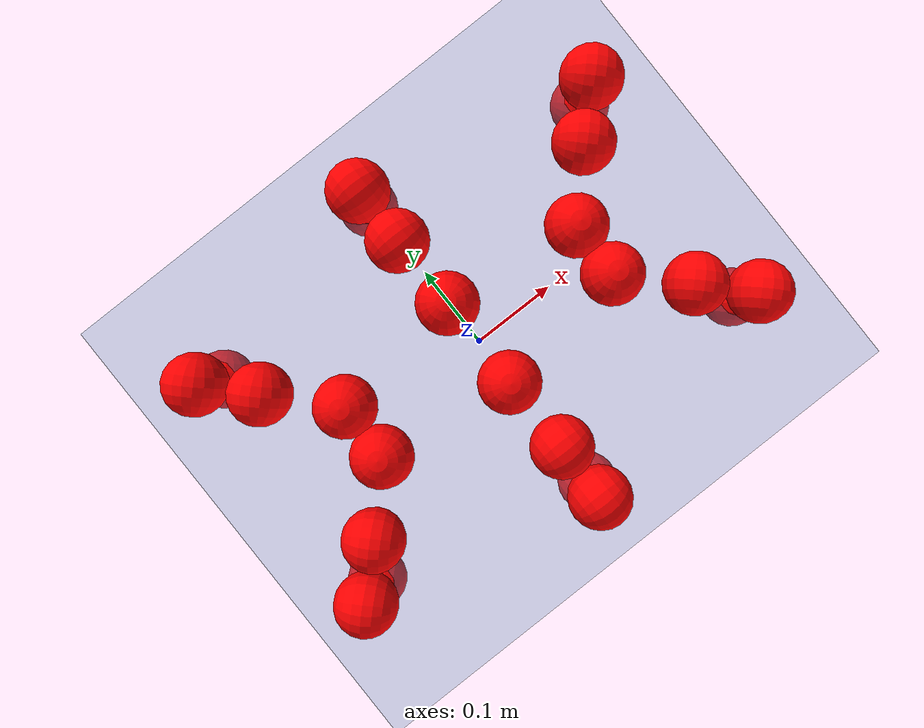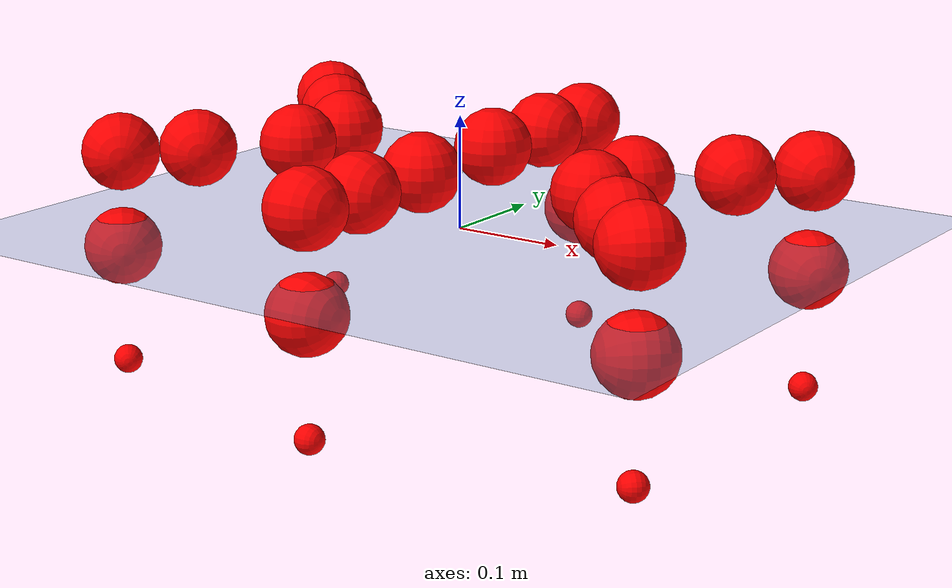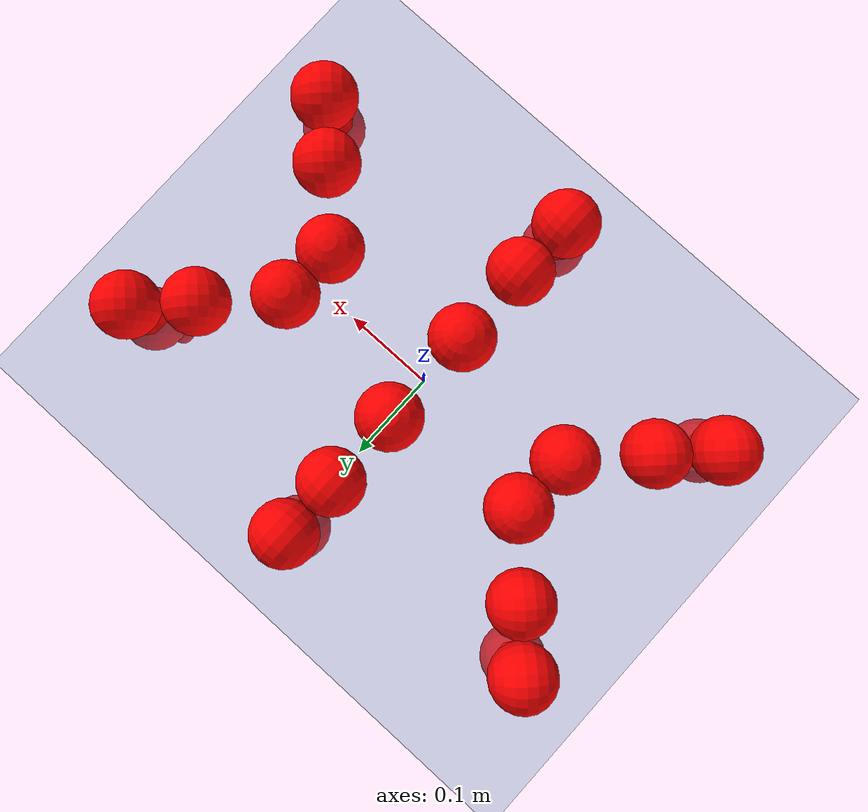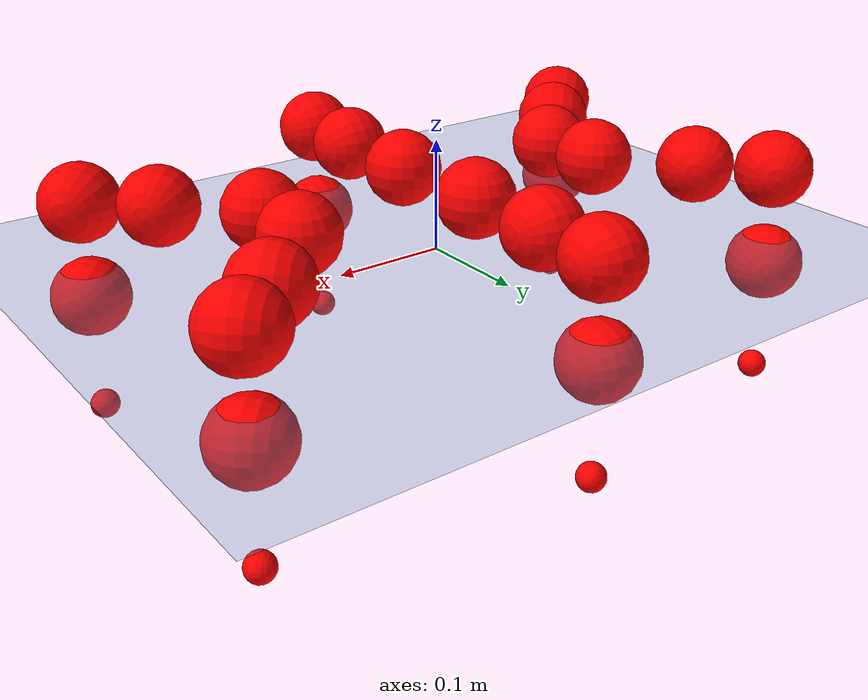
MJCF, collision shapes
<mujoco model="Golem">
  <compiler angle="radian" assetdir="assets" balanceinertia="true" inertiafromgeom="false"/>

  <option timestep="0.005" density="1.2" viscosity="2e-05"/>

  <size nkey="1"/>

  <visual>
    <quality shadowsize="8192"/>
    <map shadowclip="0.5"/>
  </visual>

  <default>
    <default class="/">
      <joint armature="0.01" damping="0.01" frictionloss="0.01"/>
      <geom contype="0" conaffinity="0" group="1" solref="-1000 -80"/>
      <site size="0.01 0.005 0.005" group="5"/>
      <general forcelimited="true" biastype="affine" gainprm="25" biasprm="0 -25 -0.5"/>
      <default class="visual">
        <geom type="mesh" group="2"/>
      </default>
      <default class="collision">
        <geom group="3"/>
      </default>
      <default class="foot">
        <geom size="0.01 0 0" condim="6" group="4" priority="1" solimp="0.015 1 0.01"/>
      </default>
      <default class="reward_collision_sphere">
        <geom group="5" rgba="1 0 0 1"/>
      </default>
    </default>
  </default>

  <asset>
    <texture type="skybox" colorspace="auto" name="//unnamed_texture_0" builtin="gradient" rgb1="0.95 0.95 0.95" rgb2="0.95 0.95 0.95" width="100" height="600"/>
    <texture type="2d" colorspace="auto" name="texplane" builtin="checker" rgb1="0.345 0.575 0.748" rgb2="0.345 0.575 0.748" markrgb="1 1 1" width="512" height="512"/>
    <material name="MatPlane" class="/" texture="texplane" texuniform="true" texrepeat="2 2" specular="0.9"/>
    <mesh name="body" class="/" file="body.stl" scale="0.001 0.001 0.001"/>
    <mesh name="coxa" class="/" file="coxa.stl" scale="0.001 0.001 0.001"/>
    <mesh name="femur" class="/" file="femur.stl" scale="0.001 0.001 0.001"/>
    <mesh name="tibia" class="/" file="tibia.stl" scale="0.001 0.001 0.001"/>
    <mesh name="tarsus" class="/" file="tarsus.stl" scale="0.001 0.001 0.001"/>
  </asset>

  <worldbody>
    <geom name="floor" class="/" size="100 100 0.125" type="plane" group="0" material="MatPlane"/>
    <light name="toplight_shadow" class="/" pos="0 0 5" dir="0.0990148 0.0990148 -0.990148" type="directional" ambient="0.04 0.04 0.04" diffuse="0.55 0.55 0.55" specular="0.12 0.12 0.12"/>
    <light name="toplight_fill" class="/" pos="0 0 5" dir="0.0990148 0.0990148 -0.990148" type="directional" castshadow="false" ambient="0.04 0.04 0.04" diffuse="0.3 0.3 0.3" specular="0.08 0.08 0.08"/>
    <body name="trunk" pos="-0.000330383 -7.02799e-05 0.00016397" quat="1 0.000209699 3.2695e-05 -0.000831567">
      <inertial pos="0.000210242 0.00180661 -0.00172405" quat="0.999995 5.38453e-05 0.00199328 0.00226364" mass="2.39011" diaginertia="0.00943942 0.00103657 0.00837719"/>
      <joint name="//unnamed_joint_0" type="free"/>
      <geom name="//unnamed_geom_1" class="/" pos="0 0 0.0620126" quat="1 0 0 0" type="mesh" rgba="0.9 0.9 0.9 1" mesh="body"/>
      <site name="imu" class="/" pos="0.130693 0.00492482 0.100876" size="0.0086608"/>
      <camera name="track" class="/" pos="0 -1.27275 0" quat="0.707107 0.707107 0 0" mode="trackcom"/>
      <camera name="ego_camera" class="/" pos="0.129079 0 0.0968947" quat="-0.5 -0.5 0.5 0.5"/>
      <body name="coxa_RR" pos="-0.177091 -0.0526051 0.0617248" quat="0.382613 0.000342691 -0.000576874 -0.923909">
        <inertial pos="-0.000285742 -0.000818159 -0.000688471" quat="0.999946 -0.00128465 0.00640424 0.0081182" mass="0.135452" diaginertia="0.00982171 0.00105 0.00878413"/>
        <joint name="coxa_joint_RR" class="/" pos="0 0 0" axis="0.000690885 -0.00163613 -0.999998" range="-3.14188 3.09731" armature="0.00951978" damping="0.00423873" frictionloss="0.00856515"/>
        <geom name="//unnamed_geom_2" class="/" type="mesh" rgba="0.2 0.2 0.2 1" mesh="coxa"/>
        <geom name="//unnamed_geom_3" class="reward_collision_sphere" size="0.0346432" pos="-0.0297874 0 0"/>
        <body name="femur_RR" pos="0.0593585 0.00156101 -0.0010883" quat="0.499993 -0.500008 0.500001 0.499998">
          <inertial pos="0.00146765 -0.00108729 0.000464147" quat="0.999977 0.00438472 -0.002852 0.00436554" mass="0.130199" diaginertia="0.00959525 0.00103976 0.00854418"/>
          <joint name="femur_joint_RR" class="/" pos="0 0 0" axis="9.84096e-05 -0.000386199 -1" range="-3.15012 3.14426" armature="0.00871594" damping="0.0028053" frictionloss="0.00823765"/>
          <geom name="//unnamed_geom_4" class="/" type="mesh" rgba="0.9 0.9 0.9 1" mesh="femur"/>
          <geom name="//unnamed_geom_5" class="reward_collision_sphere" size="0.0346432"/>
          <body name="tibia_RR" pos="0.000627736 -0.0681479 -4.0073e-05" quat="-0.000213572 1 2.15399e-05 -3.66162e-05">
            <inertial pos="-0.000410661 0.000784212 0.000116182" quat="0.999988 -0.00255339 -0.00173062 0.00370569" mass="0.13282" diaginertia="0.00949773 0.00103429 0.00857118"/>
            <joint name="tibia_joint_RR" class="/" pos="0 0 0" axis="0.00366929 0.00387411 0.999986" range="-3.12001 3.14484" armature="0.0086557" damping="0" frictionloss="0.00852203"/>
            <geom name="//unnamed_geom_6" class="/" type="mesh" rgba="0.2 0.2 0.2 1" mesh="tibia"/>
            <geom name="//unnamed_geom_7" class="reward_collision_sphere" size="0.0346432"/>
            <body name="tarsus_RR" pos="0.0865365 0.00155351 0.000202812" quat="1 0.00018173 -0.000139148 -2.29233e-05">
              <inertial pos="0.0612072 0.000358953 0.000870832" quat="0.500377 0.499764 0.500039 0.499819" mass="0.132409" diaginertia="0.00983197 0.00105968 0.00871976"/>
              <joint name="tarsus_joint_RR" class="/" pos="0 0 0" axis="0.00121316 -0.000773671 0.999999" stiffness="0.00247923" range="-3.13393 3.13836" armature="0.00884617" damping="0.0406999" frictionloss="0.00834671"/>
              <geom name="//unnamed_geom_8" class="/" type="mesh" rgba="0.9 0.9 0.9 1" mesh="tarsus"/>
              <geom name="foot_1" class="foot" size="0.00869986" pos="0.111206 0 0" quat="0 -0.707107 0 0.707107"/>
              <geom name="//unnamed_geom_10" class="reward_collision_sphere" size="0.0346432"/>
              <geom name="//unnamed_geom_11" class="reward_collision_sphere" size="0.0129912" pos="0.106738 0 0"/>
              <site name="foot_1" class="foot" pos="0.111206 0 0" quat="0 -0.707107 0 0.707107" size="0.0086608"/>
            </body>
          </body>
        </body>
      </body>
      <body name="coxa_RM" pos="-0.00192541 -0.0836276 0.0602215" quat="0.706871 -0.000250397 0.000313441 -0.707343">
        <inertial pos="-0.00113399 0.00027367 0.000563976" quat="0.999999 -0.000546865 -0.000697925 -0.00131495" mass="0.132754" diaginertia="0.00994431 0.00105282 0.00868089"/>
        <joint name="coxa_joint_RM" class="/" pos="0 0 0" axis="8.46624e-05 -0.00189251 -0.999998" range="-3.12596 3.13379" armature="0.00878528" damping="0.00893251" frictionloss="0.00880297"/>
        <geom name="//unnamed_geom_12" class="/" type="mesh" rgba="0.2 0.2 0.2 1" mesh="coxa"/>
        <geom name="//unnamed_geom_13" class="reward_collision_sphere" size="0.0346432" pos="-0.0297874 0 0"/>
        <body name="femur_RM" pos="0.0577703 0.00125032 0.000522391" quat="0.500057 -0.500252 0.499715 0.499976">
          <inertial pos="0.000480825 0.000291728 -0.00101304" quat="0.999955 0.00503471 -0.00228365 -0.0077435" mass="0.125133" diaginertia="0.00950456 0.00101656 0.00835562"/>
          <joint name="femur_joint_RM" class="/" pos="0 0 0" axis="0.000208863 0.00010711 -1" range="-3.17957 3.15197" armature="0.00884002" damping="0.00914549" frictionloss="0.00864531"/>
          <geom name="//unnamed_geom_14" class="/" type="mesh" rgba="0.9 0.9 0.9 1" mesh="femur"/>
          <geom name="//unnamed_geom_15" class="reward_collision_sphere" size="0.0346432"/>
          <body name="tibia_RM" pos="-0.000340881 -0.0664859 -0.00149769" quat="-0.000740911 1 0.000475586 0.000382314">
            <inertial pos="-0.000278411 -0.00100067 0.000648225" quat="0.999997 -0.00237744 0.00114483 0.00015224" mass="0.129685" diaginertia="0.00960623 0.00101886 0.0082711"/>
            <joint name="tibia_joint_RM" class="/" pos="0 0 0" axis="0.000243152 0.000149627 1" range="-3.14077 3.13901" armature="0.0084902" damping="0.000806422" frictionloss="0.00891292"/>
            <geom name="//unnamed_geom_16" class="/" type="mesh" rgba="0.2 0.2 0.2 1" mesh="tibia"/>
            <geom name="//unnamed_geom_17" class="reward_collision_sphere" size="0.0346432"/>
            <body name="tarsus_RM" pos="0.0880358 0.000261687 0.000135893" quat="1 -5.27051e-05 -0.000543412 0.00039832">
              <inertial pos="0.0598732 0.000204474 0.000144401" quat="0.501755 0.499784 0.496214 0.502225" mass="0.129646" diaginertia="0.0095977 0.00104107 0.00841026"/>
              <joint name="tarsus_joint_RM" class="/" pos="0 0 0" axis="0.00364683 0.00402929 0.999985" range="-3.14267 3.17912" armature="0.0088885" damping="0.00660426" frictionloss="0.00778752"/>
              <geom name="//unnamed_geom_18" class="/" type="mesh" rgba="0.9 0.9 0.9 1" mesh="tarsus"/>
              <geom name="foot_2" class="foot" size="0.00840959" pos="0.111206 0 0" quat="0 -0.707107 0 0.707107"/>
              <geom name="//unnamed_geom_20" class="reward_collision_sphere" size="0.0346432"/>
              <geom name="//unnamed_geom_21" class="reward_collision_sphere" size="0.0129912" pos="0.106738 0 0"/>
              <site name="foot_2" class="foot" pos="0.111206 0 0" quat="0 -0.707107 0 0.707107" size="0.0086608"/>
            </body>
          </body>
        </body>
      </body>
      <body name="coxa_RF" pos="0.175348 -0.0521596 0.0613738" quat="0.923854 -0.000290841 0.000518233 -0.382745">
        <inertial pos="0.00172614 0.00159395 5.3043e-05" quat="1 0.000227834 0.000588031 0.000635296" mass="0.130678" diaginertia="0.00971862 0.00104964 0.00852877"/>
        <joint name="coxa_joint_RF" class="/" pos="0 0 0" axis="0.00024892 0.000504354 -1" range="-3.15687 3.10554" armature="0.00911784" damping="0.00822023" frictionloss="0.00887207"/>
        <geom name="//unnamed_geom_22" class="/" type="mesh" rgba="0.2 0.2 0.2 1" mesh="coxa"/>
        <geom name="//unnamed_geom_23" class="reward_collision_sphere" size="0.0346432" pos="-0.0297874 0 0"/>
        <body name="femur_RF" pos="0.0583871 -2.66891e-05 -0.000692551" quat="0.500228 -0.500225 0.500002 0.499545">
          <inertial pos="0.00018143 0.000198965 0.00198232" quat="0.999986 -0.00248677 0.000903255 -0.00467569" mass="0.126672" diaginertia="0.00943612 0.00102054 0.00817552"/>
          <joint name="femur_joint_RF" class="/" pos="0 0 0" axis="0.00854376 -0.00531353 -0.999949" range="-3.1492 3.14911" armature="0.00959382" damping="0.00956564" frictionloss="0.00888874"/>
          <geom name="//unnamed_geom_24" class="/" type="mesh" rgba="0.9 0.9 0.9 1" mesh="femur"/>
          <geom name="//unnamed_geom_25" class="reward_collision_sphere" size="0.0346432"/>
          <body name="tibia_RF" pos="0.000855742 -0.0692207 -0.000101186" quat="6.42403e-05 1 -0.00044214 -6.47867e-05">
            <inertial pos="0.000533648 0.000167645 0.000429039" quat="0.999994 0.00267603 0.00141094 0.0014623" mass="0.128938" diaginertia="0.00960207 0.00103083 0.00869021"/>
            <joint name="tibia_joint_RF" class="/" pos="0 0 0" axis="0.00111111 -0.000301304 0.999999" range="-3.14141 3.17019" armature="0.00883752" damping="0.00980925" frictionloss="0.00824725"/>
            <geom name="//unnamed_geom_26" class="/" type="mesh" rgba="0.2 0.2 0.2 1" mesh="tibia"/>
            <geom name="//unnamed_geom_27" class="reward_collision_sphere" size="0.0346432"/>
            <body name="tarsus_RF" pos="0.0862515 0.000162137 0.000352452" quat="1 -8.85178e-05 0.000916188 -0.000124634">
              <inertial pos="0.0590718 -4.81025e-05 -0.000306625" quat="0.499742 0.499664 0.500123 0.50047" mass="0.130244" diaginertia="0.00968349 0.00104388 0.00843368"/>
              <joint name="tarsus_joint_RF" class="/" pos="0 0 0" axis="-0.00833093 -0.00258837 0.999962" range="-3.14376 3.13228" armature="0.00866612" damping="0.00730317" frictionloss="0.00852799"/>
              <geom name="//unnamed_geom_28" class="/" type="mesh" rgba="0.9 0.9 0.9 1" mesh="tarsus"/>
              <geom name="foot_3" class="foot" size="0.00892522" pos="0.111206 0 0" quat="0 -0.707107 0 0.707107"/>
              <geom name="//unnamed_geom_30" class="reward_collision_sphere" size="0.0346432"/>
              <geom name="//unnamed_geom_31" class="reward_collision_sphere" size="0.0129912" pos="0.106738 0 0"/>
              <site name="foot_3" class="foot" pos="0.111206 0 0" quat="0 -0.707107 0 0.707107" size="0.0086608"/>
            </body>
          </body>
        </body>
      </body>
      <body name="coxa_LR" pos="-0.174396 0.0545065 0.0639002" quat="0.382909 0.000549975 -0.00015707 0.923786">
        <inertial pos="0.000127747 -0.000123753 -0.000234748" quat="0.999999 0.00145569 0.000186292 0.000240578" mass="0.130947" diaginertia="0.00948701 0.00104582 0.0083031"/>
        <joint name="coxa_joint_LR" class="/" pos="0 0 0" axis="-0.00433048 0.00880302 -0.999952" range="-3.12084 3.13645" armature="0.00906123" damping="0.0059077" frictionloss="0.00852332"/>
        <geom name="//unnamed_geom_32" class="/" type="mesh" rgba="0.2 0.2 0.2 1" mesh="coxa"/>
        <geom name="//unnamed_geom_33" class="reward_collision_sphere" size="0.0346432" pos="-0.0297874 0 0"/>
        <body name="femur_LR" pos="0.0612825 -0.0023714 -0.0017924" quat="0.500441 -0.499958 0.500026 0.499575">
          <inertial pos="-0.000121108 -0.000615343 -0.00100612" quat="0.999988 -0.000131472 -0.00102933 -0.00477432" mass="0.128239" diaginertia="0.00955257 0.00105085 0.00849983"/>
          <joint name="femur_joint_LR" class="/" pos="0 0 0" axis="0.00224396 0.0018964 0.999996" range="-3.16854 3.16562" armature="0.00857171" damping="0" frictionloss="0.00901342"/>
          <geom name="//unnamed_geom_34" class="/" type="mesh" rgba="0.9 0.9 0.9 1" mesh="femur"/>
          <geom name="//unnamed_geom_35" class="reward_collision_sphere" size="0.0346432"/>
          <body name="tibia_LR" pos="0.000645037 -0.0691605 -0.00215649" quat="-0.000294242 1 0.000142344 2.71541e-05">
            <inertial pos="-0.00228555 0.00102439 -0.00141552" quat="0.999998 0.00147639 0.000658856 -0.000621653" mass="0.129835" diaginertia="0.00956922 0.00105404 0.0085089"/>
            <joint name="tibia_joint_LR" class="/" pos="0 0 0" axis="0.00152376 0.00149077 -0.999998" range="-3.10843 3.152" armature="0.008978" damping="0.00338433" frictionloss="0.0090855"/>
            <geom name="//unnamed_geom_36" class="/" type="mesh" rgba="0.2 0.2 0.2 1" mesh="tibia"/>
            <geom name="//unnamed_geom_37" class="reward_collision_sphere" size="0.0346432"/>
            <body name="tarsus_LR" pos="0.0889731 0.000758078 0.00102172" quat="1 -2.79184e-05 0.000116462 -0.000128318">
              <inertial pos="0.0604703 0.000486842 -0.000629196" quat="0.500248 0.500467 0.499568 0.499716" mass="0.133568" diaginertia="0.0098796 0.00106107 0.00869319"/>
              <joint name="tarsus_joint_LR" class="/" pos="0 0 0" axis="0.00678139 0.00749042 -0.999949" stiffness="0.0012126" range="-3.14441 3.12904" armature="0.00863784" damping="0.0282595" frictionloss="0.0089028"/>
              <geom name="//unnamed_geom_38" class="/" type="mesh" rgba="0.9 0.9 0.9 1" mesh="tarsus"/>
              <geom name="foot_4" class="foot" size="0.00825326" pos="0.111206 0 0" quat="0.707107 0 -0.707107 0"/>
              <geom name="//unnamed_geom_40" class="reward_collision_sphere" size="0.0346432"/>
              <geom name="//unnamed_geom_41" class="reward_collision_sphere" size="0.0129912" pos="0.106738 0 0"/>
              <site name="foot_4" class="foot" pos="0.111206 0 0" quat="0.707107 0 -0.707107 0" size="0.0086608"/>
            </body>
          </body>
        </body>
      </body>
      <body name="coxa_LM" pos="-0.00167528 0.0821329 0.0627352" quat="0.707036 0.000146825 -0.000170691 0.707177">
        <inertial pos="0.00190068 0.00184012 -0.000176938" quat="1 -6.53375e-05 8.28458e-06 0.000333852" mass="0.129998" diaginertia="0.00955024 0.00104292 0.00854377"/>
        <joint name="coxa_joint_LM" class="/" pos="0 0 0" axis="0.000782619 0.00064622 -0.999999" range="-3.14437 3.14446" armature="0.00912703" damping="0.00745093" frictionloss="0.00848885"/>
        <geom name="//unnamed_geom_42" class="/" type="mesh" rgba="0.2 0.2 0.2 1" mesh="coxa"/>
        <geom name="//unnamed_geom_43" class="reward_collision_sphere" size="0.0346432" pos="-0.0297874 0 0"/>
        <body name="femur_LM" pos="0.0544318 0.000621494 -0.000163566" quat="0.499151 -0.499997 0.500526 0.500325">
          <inertial pos="-0.000123854 -0.000527659 2.94529e-05" quat="0.999995 0.00239483 0.000650673 0.001867" mass="0.129025" diaginertia="0.00964552 0.00103483 0.00842067"/>
          <joint name="femur_joint_LM" class="/" pos="0 0 0" axis="-8.07147e-05 5.05073e-05 1" range="-3.15997 3.13702" armature="0.00786424" damping="0.000530775" frictionloss="0.00884398"/>
          <geom name="//unnamed_geom_44" class="/" type="mesh" rgba="0.9 0.9 0.9 1" mesh="femur"/>
          <geom name="//unnamed_geom_45" class="reward_collision_sphere" size="0.0346432"/>
          <body name="tibia_LM" pos="0.00165594 -0.0672245 0.000181256" quat="-2.42868e-05 1 8.7433e-05 2.36184e-05">
            <inertial pos="-0.00122158 -0.000964873 -0.000761655" quat="0.999989 0.00453782 0.000623919 -0.00139017" mass="0.127815" diaginertia="0.0096042 0.0010577 0.00872469"/>
            <joint name="tibia_joint_LM" class="/" pos="0 0 0" axis="0.000351394 -0.000518066 -1" range="-3.12114 3.14693" armature="0.00869572" damping="0" frictionloss="0.00878825"/>
            <geom name="//unnamed_geom_46" class="/" type="mesh" rgba="0.2 0.2 0.2 1" mesh="tibia"/>
            <geom name="//unnamed_geom_47" class="reward_collision_sphere" size="0.0346432"/>
            <body name="tarsus_LM" pos="0.0866406 0.000787593 -0.00180505" quat="1 -1.01665e-05 -1.58707e-05 0.000176894">
              <inertial pos="0.0606896 -0.000954344 -3.35518e-05" quat="0.501038 0.498953 0.501919 0.498081" mass="0.135257" diaginertia="0.00970592 0.00106769 0.00855131"/>
              <joint name="tarsus_joint_LM" class="/" pos="0 0 0" axis="-0.00548717 0.00495338 -0.999973" stiffness="0.00354084" range="-3.14019 3.13749" armature="0.00880023" damping="0.0123355" frictionloss="0.00864742"/>
              <geom name="//unnamed_geom_48" class="/" type="mesh" rgba="0.9 0.9 0.9 1" mesh="tarsus"/>
              <geom name="foot_5" class="foot" size="0.00836374" pos="0.111206 0 0" quat="0.707107 0 -0.707107 0"/>
              <geom name="//unnamed_geom_50" class="reward_collision_sphere" size="0.0346432"/>
              <geom name="//unnamed_geom_51" class="reward_collision_sphere" size="0.0129912" pos="0.106738 0 0"/>
              <site name="foot_5" class="foot" pos="0.111206 0 0" quat="0.707107 0 -0.707107 0" size="0.0086608"/>
            </body>
          </body>
        </body>
      </body>
      <body name="coxa_LF" pos="0.177038 0.0531016 0.0615921" quat="0.923904 3.7673e-05 0.000291561 0.382625">
        <inertial pos="0.000255313 -0.000502336 -9.35358e-06" quat="1 -1.28784e-06 3.45805e-05 -1.83731e-06" mass="0.127367" diaginertia="0.00955051 0.00104052 0.00849107"/>
        <joint name="coxa_joint_LF" class="/" pos="0 0 0" axis="-0.00319972 -7.22037e-05 -0.999995" range="-3.12872 3.15643" armature="0.0084148" damping="0.00261988" frictionloss="0.0086559"/>
        <geom name="//unnamed_geom_52" class="/" type="mesh" rgba="0.2 0.2 0.2 1" mesh="coxa"/>
        <geom name="//unnamed_geom_53" class="reward_collision_sphere" size="0.0346432" pos="-0.0297874 0 0"/>
        <body name="femur_LF" pos="0.0592367 0.00244229 -0.00259636" quat="0.500208 -0.499619 0.499955 0.500218">
          <inertial pos="-0.00114376 -0.000914327 0.000671975" quat="1 -0.000692484 -0.00015481 0.000477552" mass="0.131211" diaginertia="0.00957421 0.00104225 0.0085785"/>
          <joint name="femur_joint_LF" class="/" pos="0 0 0" axis="0.000781122 -0.00747708 0.999972" range="-3.1417 3.11084" armature="0.00834562" damping="0" frictionloss="0.00854722"/>
          <geom name="//unnamed_geom_54" class="/" type="mesh" rgba="0.9 0.9 0.9 1" mesh="femur"/>
          <geom name="//unnamed_geom_55" class="reward_collision_sphere" size="0.0346432"/>
          <body name="tibia_LF" pos="-0.0008843 -0.0690472 3.84907e-05" quat="5.89371e-05 1 0.00010879 -4.10666e-05">
            <inertial pos="-0.000914838 -0.000733513 0.000329971" quat="0.999973 0.00400843 -0.00614935 -0.000920161" mass="0.128776" diaginertia="0.00964092 0.00102665 0.00846814"/>
            <joint name="tibia_joint_LF" class="/" pos="0 0 0" axis="-0.00322375 0.00461166 -0.999984" range="-3.14644 3.15154" armature="0.0077756" damping="0.00321554" frictionloss="0.00871835"/>
            <geom name="//unnamed_geom_56" class="/" type="mesh" rgba="0.2 0.2 0.2 1" mesh="tibia"/>
            <geom name="//unnamed_geom_57" class="reward_collision_sphere" size="0.0346432"/>
            <body name="tarsus_LF" pos="0.087607 -0.000651933 0.000112339" quat="0.999999 -0.000290655 -0.000809084 0.000603744">
              <inertial pos="0.0605271 -0.000918019 0.000487503" quat="0.499747 0.500178 0.499583 0.500492" mass="0.129379" diaginertia="0.00966659 0.00103439 0.00846315"/>
              <joint name="tarsus_joint_LF" class="/" pos="0 0 0" axis="0.00686128 0.00240297 -0.999974" stiffness="0.001451" range="-3.11698 3.14834" armature="0.00888723" damping="0.0133677" frictionloss="0.00878347"/>
              <geom name="//unnamed_geom_58" class="/" type="mesh" rgba="0.9 0.9 0.9 1" mesh="tarsus"/>
              <geom name="foot_6" class="foot" size="0.0083252" pos="0.111206 0 0" quat="0.707107 0 -0.707107 0"/>
              <geom name="//unnamed_geom_60" class="reward_collision_sphere" size="0.0346432"/>
              <geom name="//unnamed_geom_61" class="reward_collision_sphere" size="0.0129912" pos="0.106738 0 0"/>
              <site name="foot_6" class="foot" pos="0.111206 0 0" quat="0.707107 0 -0.707107 0" size="0.0086608"/>
            </body>
          </body>
        </body>
      </body>
    </body>
  </worldbody>

  <contact>
    <pair class="/" geom1="floor" geom2="foot_1" name="//unnamed_contact_0"/>
    <pair class="/" geom1="floor" geom2="foot_2" name="//unnamed_contact_1"/>
    <pair class="/" geom1="floor" geom2="foot_3" name="//unnamed_contact_2"/>
    <pair class="/" geom1="floor" geom2="foot_4" name="//unnamed_contact_3"/>
    <pair class="/" geom1="floor" geom2="foot_5" name="//unnamed_contact_4"/>
    <pair class="/" geom1="floor" geom2="foot_6" name="//unnamed_contact_5"/>
  </contact>

  <actuator>
    <general name="coxa_joint_RR" class="/" joint="coxa_joint_RR" forcerange="-6.44942 6.44942" gainprm="20.6321" biasprm="0 -20.6321 -0.44781"/>
    <general name="femur_joint_RR" class="/" joint="femur_joint_RR" forcerange="-6.34352 6.34352" gainprm="20.6321" biasprm="0 -20.6321 -0.44781"/>
    <general name="tibia_joint_RR" class="/" joint="tibia_joint_RR" forcerange="-6.32692 6.32692" gainprm="20.6321" biasprm="0 -20.6321 -0.44781"/>
    <general name="tarsus_joint_RR" class="/" joint="tarsus_joint_RR" forcerange="-6.47973 6.47973" gainprm="20.6321" biasprm="0 -20.6321 -0.44781"/>
    <general name="coxa_joint_RM" class="/" joint="coxa_joint_RM" forcerange="-6.51886 6.51886" gainprm="20.6321" biasprm="0 -20.6321 -0.44781"/>
    <general name="femur_joint_RM" class="/" joint="femur_joint_RM" forcerange="-6.1719 6.1719" gainprm="20.6321" biasprm="0 -20.6321 -0.44781"/>
    <general name="tibia_joint_RM" class="/" joint="tibia_joint_RM" forcerange="-6.33905 6.33905" gainprm="20.6321" biasprm="0 -20.6321 -0.44781"/>
    <general name="tarsus_joint_RM" class="/" joint="tarsus_joint_RM" forcerange="-6.09333 6.09333" gainprm="20.6321" biasprm="0 -20.6321 -0.44781"/>
    <general name="coxa_joint_RF" class="/" joint="coxa_joint_RF" forcerange="-6.10978 6.10978" gainprm="20.6321" biasprm="0 -20.6321 -0.44781"/>
    <general name="femur_joint_RF" class="/" joint="femur_joint_RF" forcerange="-6.2257 6.2257" gainprm="20.6321" biasprm="0 -20.6321 -0.44781"/>
    <general name="tibia_joint_RF" class="/" joint="tibia_joint_RF" forcerange="-6.37591 6.37591" gainprm="20.6321" biasprm="0 -20.6321 -0.44781"/>
    <general name="tarsus_joint_RF" class="/" joint="tarsus_joint_RF" forcerange="-6.09645 6.09645" gainprm="20.6321" biasprm="0 -20.6321 -0.44781"/>
    <general name="coxa_joint_LR" class="/" joint="coxa_joint_LR" forcerange="-6.19852 6.19852" gainprm="20.6321" biasprm="0 -20.6321 -0.44781"/>
    <general name="femur_joint_LR" class="/" joint="femur_joint_LR" forcerange="-6.47734 6.47734" gainprm="20.6321" biasprm="0 -20.6321 -0.44781"/>
    <general name="tibia_joint_LR" class="/" joint="tibia_joint_LR" forcerange="-5.93156 5.93156" gainprm="20.6321" biasprm="0 -20.6321 -0.44781"/>
    <general name="tarsus_joint_LR" class="/" joint="tarsus_joint_LR" forcerange="-6.76736 6.76736" gainprm="20.6321" biasprm="0 -20.6321 -0.44781"/>
    <general name="coxa_joint_LM" class="/" joint="coxa_joint_LM" forcerange="-6.14098 6.14098" gainprm="20.6321" biasprm="0 -20.6321 -0.44781"/>
    <general name="femur_joint_LM" class="/" joint="femur_joint_LM" forcerange="-6.33468 6.33468" gainprm="20.6321" biasprm="0 -20.6321 -0.44781"/>
    <general name="tibia_joint_LM" class="/" joint="tibia_joint_LM" forcerange="-6.35166 6.35166" gainprm="20.6321" biasprm="0 -20.6321 -0.44781"/>
    <general name="tarsus_joint_LM" class="/" joint="tarsus_joint_LM" forcerange="-6.5571 6.5571" gainprm="20.6321" biasprm="0 -20.6321 -0.44781"/>
    <general name="coxa_joint_LF" class="/" joint="coxa_joint_LF" forcerange="-6.30914 6.30914" gainprm="20.6321" biasprm="0 -20.6321 -0.44781"/>
    <general name="femur_joint_LF" class="/" joint="femur_joint_LF" forcerange="-6.30896 6.30896" gainprm="20.6321" biasprm="0 -20.6321 -0.44781"/>
    <general name="tibia_joint_LF" class="/" joint="tibia_joint_LF" forcerange="-6.09449 6.09449" gainprm="20.6321" biasprm="0 -20.6321 -0.44781"/>
    <general name="tarsus_joint_LF" class="/" joint="tarsus_joint_LF" forcerange="-6.19729 6.19729" gainprm="20.6321" biasprm="0 -20.6321 -0.44781"/>
  </actuator>

  <sensor>
    <gyro site="imu" name="imu_angular_velocity"/>
    <velocimeter site="imu" name="imu_linear_velocity"/>
    <framelinvel objtype="site" objname="foot_1" name="foot_1_global_linear_velocity"/>
    <framelinvel objtype="site" objname="foot_2" name="foot_2_global_linear_velocity"/>
    <framelinvel objtype="site" objname="foot_3" name="foot_3_global_linear_velocity"/>
    <framelinvel objtype="site" objname="foot_4" name="foot_4_global_linear_velocity"/>
    <framelinvel objtype="site" objname="foot_5" name="foot_5_global_linear_velocity"/>
    <framelinvel objtype="site" objname="foot_6" name="foot_6_global_linear_velocity"/>
  </sensor>

  <keyframe>
    <key name="home" qpos="0 0 0.1457 1 0 0 0 0 0 0 0 0 0 0 0 0 0 0 0 0 0 0 0 0 0 0 0 0 0 0 0"/>
  </keyframe>
</mujoco>
